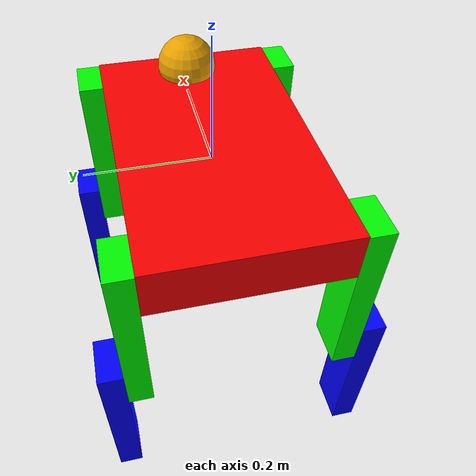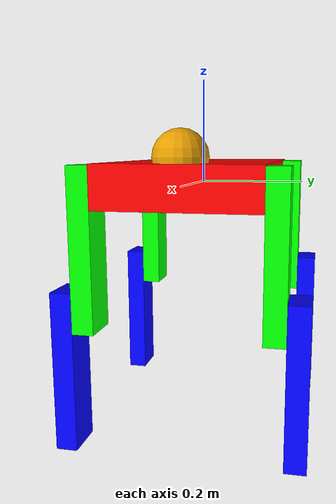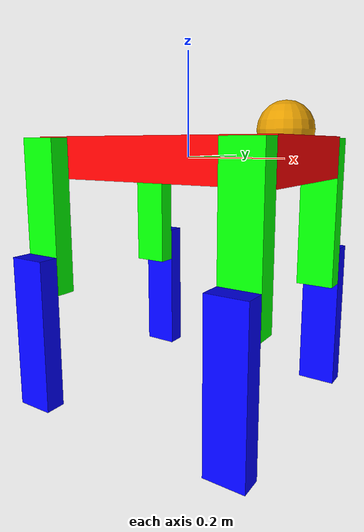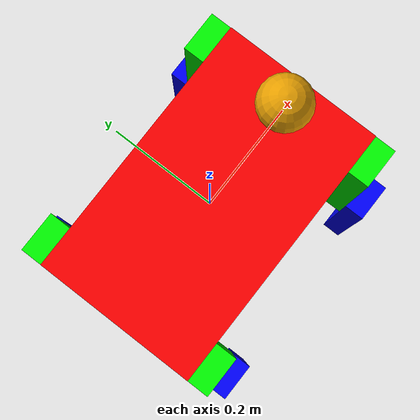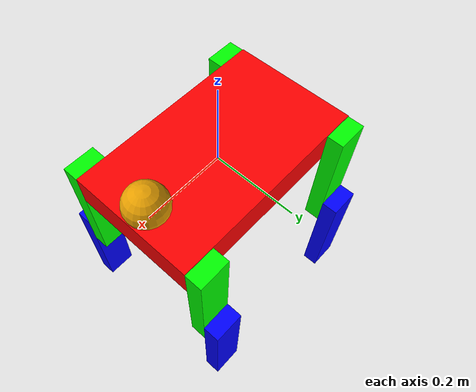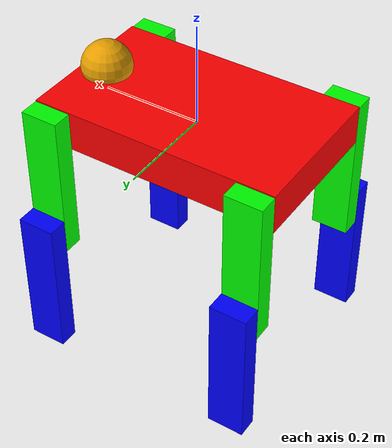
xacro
<?xml version="1.0" ?>
<robot name="nyangachi" xmlns:xacro="http://www.ros.org/wiki/xacro">

  <xacro:include filename="$(find nyangachi)/urdf/variables.xacro" />

  <xacro:include filename="$(find nyangachi)/urdf/macros.xacro" />

  <link name="link_chassis">
    <!-- pose and inertial -->
    <pose>0 0 0.1 0 0 0</pose>
    <inertial>
      <mass value="5"/>
      <origin rpy="0 0 0" xyz="0 0 0.1"/>
      <inertia ixx="0.0395416666667" ixy="0" ixz="0" iyy="0.106208333333" iyz="0" izz="0.106208333333"/>
    </inertial>
    <!-- body -->
    <collision name="collision_chassis">
      <geometry>
        <box size="0.5 0.3 0.07"/>
      </geometry>
    </collision>
    <visual>
        <origin rpy="0 0 0" xyz="0 0 0"/>
        <geometry>
            <box size="0.5 0.3 0.08"/>
        </geometry>
        <material name="red">
            <color rgba="1 0 0 1"/>
        </material>
    </visual>

    <!-- caster front -->
    <collision name="caster_front_collision">
      <origin rpy=" 0 0 0" xyz="0.35 0 0.05"/>
      <geometry>
        <sphere radius="0.05"/>
      </geometry>
      <surface>
        <friction>
          <ode>
            <mu>0</mu>
            <mu2>0</mu2>
            <slip1>1.0</slip1>
            <slip2>1.0</slip2>
          </ode>
        </friction>
      </surface>
    </collision>
    <visual name="caster_front_visual">
      <origin rpy=" 0 0 0" xyz="0.2 0 0.05"/>
      <geometry>
        <sphere radius="0.05"/>
      </geometry>
    </visual>

  </link>

    <xacro:joint_chassis_thigh name="joint_fr_thigh" child="link_fr_thigh" origin_xyz="${0.25-thigh_xlength/2} ${0.15+thigh_ylength/2} 0" />
    <xacro:link_thigh name="link_fr_thigh" origin_xyz = "0 0 ${-thigh_length/2}" />
    <xacro:joint_thigh_forearm name="joint_fr_forearm" child="link_fr_forearm" parent="link_fr_thigh" origin_xyz="0 ${forearm_ylength} ${-thigh_length}" />
    <xacro:link_forearm name="link_fr_forearm" origin_xyz = "0 0 ${-forearm_length/2}" />

    <xacro:joint_chassis_thigh name="joint_fl_thigh" child="link_fl_thigh" origin_xyz="${0.25-thigh_xlength/2} -${0.15+thigh_ylength/2} 0" />
    <xacro:link_thigh name="link_fl_thigh" origin_xyz = "0 0 ${-thigh_length/2}"/>
    <xacro:joint_thigh_forearm name="joint_fl_forearm" child="link_fl_forearm" parent="link_fl_thigh" origin_xyz="0 -${forearm_ylength} ${-thigh_length}" />
    <xacro:link_forearm name="link_fl_forearm" origin_xyz = "0 0 ${-forearm_length/2}"/>

    <xacro:joint_chassis_thigh name="joint_br_thigh" child="link_br_thigh" origin_xyz="-${0.25-thigh_xlength/2} ${0.15+thigh_ylength/2} 0.0" />
    <xacro:link_thigh name="link_br_thigh" origin_xyz = "0 0 ${-thigh_length/2}"/>
    <xacro:joint_thigh_forearm name="joint_br_forearm" child="link_br_forearm" parent="link_br_thigh" origin_xyz="0 ${forearm_ylength} ${-thigh_length}" />
    <xacro:link_forearm name="link_br_forearm" origin_xyz = "0 0 ${-forearm_length/2}"/>

    <xacro:joint_chassis_thigh name="joint_bl_thigh" child="link_bl_thigh" origin_xyz="-${0.25-thigh_xlength/2} -${0.15+thigh_ylength/2} 0.0" />
    <xacro:link_thigh name="link_bl_thigh" origin_xyz = "0 0 ${-thigh_length/2}"/>
    <xacro:joint_thigh_forearm name="joint_bl_forearm" child="link_bl_forearm" parent="link_bl_thigh" origin_xyz="0 -${forearm_ylength} ${-thigh_length}" />
    <xacro:link_forearm name="link_bl_forearm" origin_xyz = "0 0 ${-forearm_length/2}"/>

</robot>

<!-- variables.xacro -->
<robot xmlns:xacro="http://www.ros.org/wiki/xacro">
 <!-- variables -->
    <xacro:property name="thigh_length" value="0.225" />
    <xacro:property name="forearm_length" value="0.225" />
    <xacro:property name="thigh_xlength" value="0.075" />
    <xacro:property name="thigh_ylength" value="0.04" />
    <xacro:property name="forearm_xlength" value="0.075" />
    <xacro:property name="forearm_ylength" value="0.04" />

</robot>

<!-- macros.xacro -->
<robot xmlns:xacro="http://www.ros.org/wiki/xacro">
    <xacro:include filename="$(find nyangachi)/urdf/variables.xacro" />

    <macro name="link_forearm" params="name origin_xyz">
        <link name="${name}">
            <collision name="${name}_collision">
                <origin xyz="${origin_xyz}" rpy="0 0 0"/>
              <geometry>
                <box size="0.05 ${forearm_ylength} ${forearm_length}"/>
              </geometry>
            </collision>
            <visual name="${name}_visual">
                <origin xyz="${origin_xyz}" rpy="0 0 0"/>
                <geometry>
                <box size="${forearm_xlength} ${forearm_ylength} 0.3"/>
                </geometry>
                <material name="blue">
                  <color rgba="0 0 1 1"/>
                </material>
            </visual>
        </link>
    </macro>

   <macro name="link_thigh" params="name origin_xyz">
        <link name="${name}">
            <collision name="${name}_collision">
                 <origin xyz="${origin_xyz}" rpy="0 0 0"/>
              <geometry>
                <box size="${thigh_xlength} ${thigh_ylength} ${thigh_length}"/>
              </geometry>
            </collision>
            <visual name="${name}_visual">
                <origin xyz="${origin_xyz}" rpy="0 0 0"/>
                <geometry>
                <box size="${thigh_xlength} ${thigh_ylength} 0.3"/>
                </geometry>
                <material name="green">
                  <color rgba="0 1 0 1"/>
                </material>
            </visual>
        </link>
    </macro>

    <macro name="joint_chassis_thigh" params="name child origin_xyz">
      <joint name="${name}" type="revolute">
        <origin rpy="0 0 0" xyz="${origin_xyz}"/>
        <child link="${child}"/>
        <parent link="link_chassis"/>
        <axis rpy="0 0 0" xyz="0 1 0"/>
        <limit effort="1000.0" lower="-3.14" upper="3.14" velocity="0.5"/>
      </joint>
    </macro>

    <macro name="joint_thigh_forearm" params="name child parent origin_xyz">
      <joint name="${name}" type="revolute">
        <origin rpy="0 0 0" xyz="${origin_xyz}"/>
        <child link="${child}"/>
        <parent link="${parent}"/>
        <axis rpy="0 0 0" xyz="0 1 0"/>
        <limit effort="1000.0" lower="-3.14" upper="3.14" velocity="0.5"/>
      </joint>
    </macro>

</robot>
